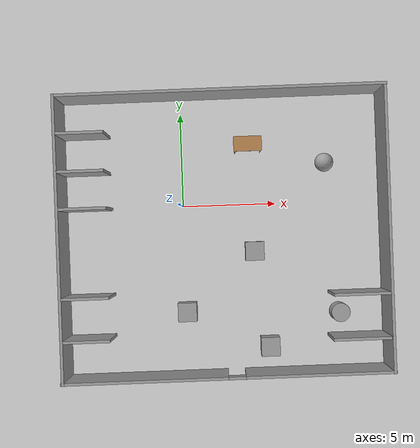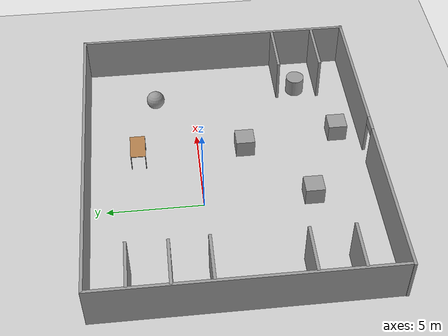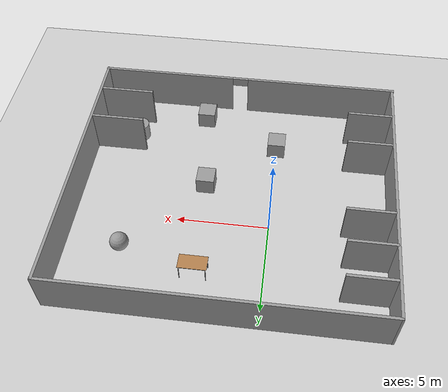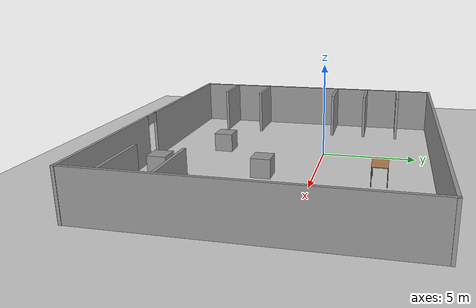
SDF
<sdf version="1.7">
 <world name="default">
  <light name="sun" type="directional">
   <pose>0 0 10 0 -0 0</pose>
   <diffuse>0.8 0.8 0.8 1</diffuse>
   <specular>0.2 0.2 0.2 1</specular>
   <attenuation>
    <range>1000</range>
    <constant>0.9</constant>
    <linear>0.01</linear>
    <quadratic>0.001</quadratic>
   </attenuation>
   <direction>-0.5 0.1 -0.9</direction>
   <spot><inner_angle>0</inner_angle><outer_angle>0</outer_angle><falloff>0</falloff></spot>
  </light>
  <model name="ground_plane">
   <static>1</static>
   <link name="link">
    <collision name="collision">
     <geometry><plane><normal>0 0 1</normal><size>100 100</size></plane></geometry>
     <surface>
      <contact><collide_bitmask>65535</collide_bitmask></contact>
      <friction><ode><mu>100</mu><mu2>50</mu2></ode></friction>
     </surface>
    </collision>
    <visual name="visual">
     <cast_shadows>0</cast_shadows>
     <geometry><plane><normal>0 0 1</normal><size>100 100</size></plane></geometry>
     <material>
      <script><uri>file://media/materials/scripts/gazebo.material</uri><name>Gazebo/Grey</name></script>
     </material>
    </visual>
   </link>
  </model>
  <gravity>0 0 -9.8</gravity>
  <magnetic_field>6e-06 2.3e-05 -4.2e-05</magnetic_field>
  <atmosphere type="adiabatic"/>
  <physics type="ode">
   <max_step_size>0.001</max_step_size>
   <real_time_factor>1</real_time_factor>
   <real_time_update_rate>1000</real_time_update_rate>
  </physics>
  <scene><ambient>0.4 0.4 0.4 1</ambient><background>0.7 0.7 0.7 1</background><shadows>1</shadows></scene>
  <spherical_coordinates>
   <surface_model>EARTH_WGS84</surface_model>
   <latitude_deg>0</latitude_deg>
   <longitude_deg>0</longitude_deg>
   <elevation>0</elevation>
   <heading_deg>0</heading_deg>
  </spherical_coordinates>
  <model name="factory1">
   <pose>2.14031 -1.54195 0 0 -0 0</pose>
   <link name="Wall_1">
    <collision name="Wall_1_Collision">
     <geometry><box><size>15 0.15 2.5</size></box></geometry>
     <pose>0 0 1.25 0 -0 0</pose>
    </collision>
    <visual name="Wall_1_Visual">
     <pose>0 0 1.25 0 -0 0</pose>
     <geometry><box><size>15 0.15 2.5</size></box></geometry>
     <material>
      <script><uri>file://media/materials/scripts/gazebo.material</uri><name>Gazebo/Grey</name></script>
      <ambient>1 1 1 1</ambient>
     </material>
     <meta><layer>0</layer></meta>
    </visual>
    <pose>-8.53231 -0.017491 0 0 -0 -1.5708</pose>
   </link>
   <link name="Wall_18">
    <collision name="Wall_18_Collision">
     <geometry><box><size>17.2147 0.15 2.5</size></box></geometry>
     <pose>0 0 1.25 0 -0 0</pose>
    </collision>
    <visual name="Wall_18_Visual">
     <pose>0 0 1.25 0 -0 0</pose>
     <geometry><box><size>17.2147 0.15 2.5</size></box></geometry>
     <material>
      <script><uri>file://media/materials/scripts/gazebo.material</uri><name>Gazebo/Grey</name></script>
      <ambient>1 1 1 1</ambient>
     </material>
     <meta><layer>0</layer></meta>
    </visual>
    <pose>0.035179 7.425 0 0 -0 0.00205</pose>
   </link>
   <link name="Wall_19">
    <collision name="Wall_19_Collision">
     <geometry><box><size>15 0.15 2.5</size></box></geometry>
     <pose>0 0 1.25 0 -0 0</pose>
    </collision>
    <visual name="Wall_19_Visual">
     <pose>0 0 1.25 0 -0 0</pose>
     <geometry><box><size>15 0.15 2.5</size></box></geometry>
     <material>
      <script><uri>file://media/materials/scripts/gazebo.material</uri><name>Gazebo/Grey</name></script>
      <ambient>1 1 1 1</ambient>
     </material>
     <meta><layer>0</layer></meta>
    </visual>
    <pose>8.55 -1e-06 0 0 -0 -1.5708</pose>
   </link>
   <link name="Wall_20">
    <pose>0 -7.425 0 0 -0 -3.13955</pose>
    <visual name="Wall_20_Visual_0">
     <pose>-4.77008 0 1.25 0 -0 0</pose>
     <geometry><box><size>7.74485 0.15 2.5</size></box></geometry>
     <material>
      <script><uri>file://media/materials/scripts/gazebo.material</uri><name>Gazebo/Grey</name></script>
      <ambient>1 1 1 1</ambient>
     </material>
     <meta><layer>0</layer></meta>
    </visual>
    <collision name="Wall_20_Collision_0">
     <geometry><box><size>7.74485 0.15 2.5</size></box></geometry>
     <pose>-4.77008 0 1.25 0 -0 0</pose>
    </collision>
    <visual name="Wall_20_Visual_1">
     <pose>4.32242 0 1.25 0 -0 0</pose>
     <geometry><box><size>8.64017 0.15 2.5</size></box></geometry>
     <material>
      <script><uri>file://media/materials/scripts/gazebo.material</uri><name>Gazebo/Grey</name></script>
      <ambient>1 1 1 1</ambient>
     </material>
     <meta><layer>0</layer></meta>
    </visual>
    <collision name="Wall_20_Collision_1">
     <geometry><box><size>8.64017 0.15 2.5</size></box></geometry>
     <pose>4.32242 0 1.25 0 -0 0</pose>
    </collision>
    <visual name="Wall_20_Visual_2">
     <pose>-0.44766 0 2.25 0 -0 0</pose>
     <geometry><box><size>0.9 0.15 0.5</size></box></geometry>
     <material>
      <script><uri>file://media/materials/scripts/gazebo.material</uri><name>Gazebo/Grey</name></script>
      <ambient>1 1 1 1</ambient>
     </material>
     <meta><layer>0</layer></meta>
    </visual>
    <collision name="Wall_20_Collision_2">
     <geometry><box><size>0.9 0.15 0.5</size></box></geometry>
     <pose>-0.44766 0 2.25 0 -0 0</pose>
    </collision>
   </link>
   <link name="Wall_22">
    <collision name="Wall_22_Collision">
     <geometry><box><size>3 0.15 2.5</size></box></geometry>
     <pose>0 0 1.25 0 -0 0</pose>
    </collision>
    <visual name="Wall_22_Visual">
     <pose>0 0 1.25 0 -0 0</pose>
     <geometry><box><size>3 0.15 2.5</size></box></geometry>
     <material>
      <script><uri>file://media/materials/scripts/gazebo.material</uri><name>Gazebo/Grey</name></script>
      <ambient>1 1 1 1</ambient>
     </material>
     <meta><layer>0</layer></meta>
    </visual>
    <pose>7.05977 -3.33911 0 0 -0 3.14159</pose>
   </link>
   <link name="Wall_24">
    <collision name="Wall_24_Collision">
     <geometry><box><size>3 0.15 2.5</size></box></geometry>
     <pose>0 0 1.25 0 -0 0</pose>
    </collision>
    <visual name="Wall_24_Visual">
     <pose>0 0 1.25 0 -0 0</pose>
     <geometry><box><size>3 0.15 2.5</size></box></geometry>
     <material>
      <script><uri>file://media/materials/scripts/gazebo.material</uri><name>Gazebo/Grey</name></script>
      <ambient>1 1 1 1</ambient>
     </material>
     <meta><layer>0</layer></meta>
    </visual>
    <pose>6.96578 -5.64317 0 0 -0 3.14159</pose>
   </link>
   <link name="Wall_35">
    <collision name="Wall_35_Collision">
     <geometry><box><size>2.5 0.15 2.5</size></box></geometry>
     <pose>0 0 1.25 0 -0 0</pose>
    </collision>
    <visual name="Wall_35_Visual">
     <pose>0 0 1.25 0 -0 0</pose>
     <geometry><box><size>2.5 0.15 2.5</size></box></geometry>
     <material>
      <script><uri>file://media/materials/scripts/gazebo.material</uri><name>Gazebo/Grey</name></script>
      <ambient>1 1 1 1</ambient>
     </material>
     <meta><layer>0</layer></meta>
    </visual>
    <pose>-7.24385 5.45639 0 0 -0 0</pose>
   </link>
   <link name="Wall_37">
    <collision name="Wall_37_Collision">
     <geometry><box><size>2.5 0.15 2.5</size></box></geometry>
     <pose>0 0 1.25 0 -0 0</pose>
    </collision>
    <visual name="Wall_37_Visual">
     <pose>0 0 1.25 0 -0 0</pose>
     <geometry><box><size>2.5 0.15 2.5</size></box></geometry>
     <material>
      <script><uri>file://media/materials/scripts/gazebo.material</uri><name>Gazebo/Grey</name></script>
      <ambient>1 1 1 1</ambient>
     </material>
     <meta><layer>0</layer></meta>
    </visual>
    <pose>-7.28948 3.47925 0 0 -0 0</pose>
   </link>
   <link name="Wall_39">
    <collision name="Wall_39_Collision">
     <geometry><box><size>2.5 0.15 2.5</size></box></geometry>
     <pose>0 0 1.25 0 -0 0</pose>
    </collision>
    <visual name="Wall_39_Visual">
     <pose>0 0 1.25 0 -0 0</pose>
     <geometry><box><size>2.5 0.15 2.5</size></box></geometry>
     <material>
      <script><uri>file://media/materials/scripts/gazebo.material</uri><name>Gazebo/Grey</name></script>
      <ambient>1 1 1 1</ambient>
     </material>
     <meta><layer>0</layer></meta>
    </visual>
    <pose>-7.22864 1.54774 0 0 -0 0</pose>
   </link>
   <link name="Wall_41">
    <collision name="Wall_41_Collision">
     <geometry><box><size>2.5 0.15 2.5</size></box></geometry>
     <pose>0 0 1.25 0 -0 0</pose>
    </collision>
    <visual name="Wall_41_Visual">
     <pose>0 0 1.25 0 -0 0</pose>
     <geometry><box><size>2.5 0.15 2.5</size></box></geometry>
     <material>
      <script><uri>file://media/materials/scripts/gazebo.material</uri><name>Gazebo/Grey</name></script>
      <ambient>1 1 1 1</ambient>
     </material>
     <meta><layer>0</layer></meta>
    </visual>
    <pose>-7.2559 -5.29563 0 0 -0 0</pose>
   </link>
   <link name="Wall_43">
    <collision name="Wall_43_Collision">
     <geometry><box><size>2.5 0.15 2.5</size></box></geometry>
     <pose>0 0 1.25 0 -0 0</pose>
    </collision>
    <visual name="Wall_43_Visual">
     <pose>0 0 1.25 0 -0 0</pose>
     <geometry><box><size>2.5 0.15 2.5</size></box></geometry>
     <material>
      <script><uri>file://media/materials/scripts/gazebo.material</uri><name>Gazebo/Grey</name></script>
      <ambient>1 1 1 1</ambient>
     </material>
     <meta><layer>0</layer></meta>
    </visual>
    <pose>-7.24788 -3.08179 0 0 -0 0</pose>
   </link>
   <static>1</static>
  </model>
  <model name="table">
   <static>1</static>
   <link name="link">
    <collision name="surface">
     <pose>0 0 1 0 -0 0</pose>
     <geometry><box><size>1.5 0.8 0.03</size></box></geometry>
     <surface><friction><ode><mu>0.6</mu><mu2>0.6</mu2></ode></friction></surface>
    </collision>
    <visual name="visual1">
     <pose>0 0 1 0 -0 0</pose>
     <geometry><box><size>1.5 0.8 0.03</size></box></geometry>
     <material>
      <script><uri>file://media/materials/scripts/gazebo.material</uri><name>Gazebo/Wood</name></script>
     </material>
    </visual>
    <collision name="front_left_leg">
     <pose>0.68 0.38 0.5 0 -0 0</pose>
     <geometry><cylinder><radius>0.02</radius><length>1</length></cylinder></geometry>
    </collision>
    <visual name="front_left_leg">
     <pose>0.68 0.38 0.5 0 -0 0</pose>
     <geometry><cylinder><radius>0.02</radius><length>1</length></cylinder></geometry>
     <material>
      <script><uri>file://media/materials/scripts/gazebo.material</uri><name>Gazebo/Grey</name></script>
     </material>
    </visual>
    <collision name="front_right_leg">
     <pose>0.68 -0.38 0.5 0 -0 0</pose>
     <geometry><cylinder><radius>0.02</radius><length>1</length></cylinder></geometry>
    </collision>
    <visual name="front_right_leg">
     <pose>0.68 -0.38 0.5 0 -0 0</pose>
     <geometry><cylinder><radius>0.02</radius><length>1</length></cylinder></geometry>
     <material>
      <script><uri>file://media/materials/scripts/gazebo.material</uri><name>Gazebo/Grey</name></script>
     </material>
    </visual>
    <collision name="back_right_leg">
     <pose>-0.68 -0.38 0.5 0 -0 0</pose>
     <geometry><cylinder><radius>0.02</radius><length>1</length></cylinder></geometry>
    </collision>
    <visual name="back_right_leg">
     <pose>-0.68 -0.38 0.5 0 -0 0</pose>
     <geometry><cylinder><radius>0.02</radius><length>1</length></cylinder></geometry>
     <material>
      <script><uri>file://media/materials/scripts/gazebo.material</uri><name>Gazebo/Grey</name></script>
     </material>
    </visual>
    <collision name="back_left_leg">
     <pose>-0.68 0.38 0.5 0 -0 0</pose>
     <geometry><cylinder><radius>0.02</radius><length>1</length></cylinder></geometry>
    </collision>
    <visual name="back_left_leg">
     <pose>-0.68 0.38 0.5 0 -0 0</pose>
     <geometry><cylinder><radius>0.02</radius><length>1</length></cylinder></geometry>
     <material>
      <script><uri>file://media/materials/scripts/gazebo.material</uri><name>Gazebo/Grey</name></script>
     </material>
    </visual>
   </link>
   <pose>3.57925 3.21937 0 0 -0 0</pose>
  </model>
  <model name="unit_cylinder">
   <pose>8.23743 -5.95551 0.499992 -3e-06 3e-06 0</pose>
   <link name="link">
    <inertial>
     <mass>1</mass>
     <inertia><ixx>0.145833</ixx><ixy>0</ixy><ixz>0</ixz><iyy>0.145833</iyy><iyz>0</iyz><izz>0.125</izz></inertia>
    </inertial>
    <collision name="collision">
     <geometry><cylinder><radius>0.5</radius><length>1</length></cylinder></geometry>
    </collision>
    <visual name="visual">
     <geometry><cylinder><radius>0.5</radius><length>1</length></cylinder></geometry>
     <material>
      <script><name>Gazebo/Grey</name><uri>file://media/materials/scripts/gazebo.material</uri></script>
     </material>
    </visual>
   </link>
  </model>
  <model name="unit_box">
   <pose>0.061739 -5.65887 0.499995 0 -1e-05 0</pose>
   <link name="link">
    <inertial>
     <mass>1</mass>
     <inertia>
      <ixx>0.166667</ixx>
      <ixy>0</ixy>
      <ixz>0</ixz>
      <iyy>0.166667</iyy>
      <iyz>0</iyz>
      <izz>0.166667</izz>
     </inertia>
    </inertial>
    <collision name="collision"><geometry><box><size>1 1 1</size></box></geometry></collision>
    <visual name="visual">
     <geometry><box><size>1 1 1</size></box></geometry>
     <material>
      <script><name>Gazebo/Grey</name><uri>file://media/materials/scripts/gazebo.material</uri></script>
     </material>
    </visual>
   </link>
  </model>
  <model name="unit_box_0">
   <pose>3.7705 -2.52113 0.499995 1e-05 -0 0</pose>
   <link name="link">
    <inertial>
     <mass>1</mass>
     <inertia>
      <ixx>0.166667</ixx>
      <ixy>0</ixy>
      <ixz>0</ixz>
      <iyy>0.166667</iyy>
      <iyz>0</iyz>
      <izz>0.166667</izz>
     </inertia>
    </inertial>
    <collision name="collision"><geometry><box><size>1 1 1</size></box></geometry></collision>
    <visual name="visual">
     <geometry><box><size>1 1 1</size></box></geometry>
     <material>
      <script><name>Gazebo/Grey</name><uri>file://media/materials/scripts/gazebo.material</uri></script>
     </material>
    </visual>
   </link>
  </model>
  <model name="unit_sphere">
   <pose>7.6792 2.11615 0.5 0 -0 0</pose>
   <link name="link">
    <inertial>
     <mass>1</mass>
     <inertia><ixx>0.1</ixx><ixy>0</ixy><ixz>0</ixz><iyy>0.1</iyy><iyz>0</iyz><izz>0.1</izz></inertia>
    </inertial>
    <collision name="collision"><geometry><sphere><radius>0.5</radius></sphere></geometry></collision>
    <visual name="visual">
     <geometry><sphere><radius>0.5</radius></sphere></geometry>
     <material>
      <script><name>Gazebo/Grey</name><uri>file://media/materials/scripts/gazebo.material</uri></script>
     </material>
    </visual>
   </link>
  </model>
  <model name="unit_box_1">
   <pose>4.44003 -7.65412 0.499995 0 1e-05 0</pose>
   <link name="link">
    <inertial>
     <mass>1</mass>
     <inertia>
      <ixx>0.166667</ixx>
      <ixy>0</ixy>
      <ixz>0</ixz>
      <iyy>0.166667</iyy>
      <iyz>0</iyz>
      <izz>0.166667</izz>
     </inertia>
    </inertial>
    <collision name="collision"><geometry><box><size>1 1 1</size></box></geometry></collision>
    <visual name="visual">
     <geometry><box><size>1 1 1</size></box></geometry>
     <material>
      <script><name>Gazebo/Grey</name><uri>file://media/materials/scripts/gazebo.material</uri></script>
     </material>
    </visual>
   </link>
  </model>
 </world>
</sdf>
